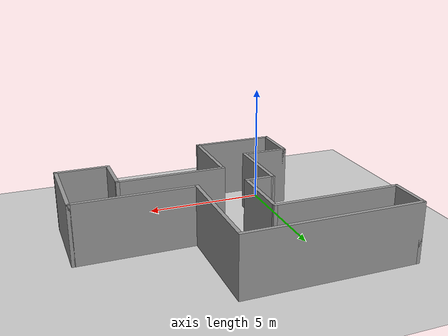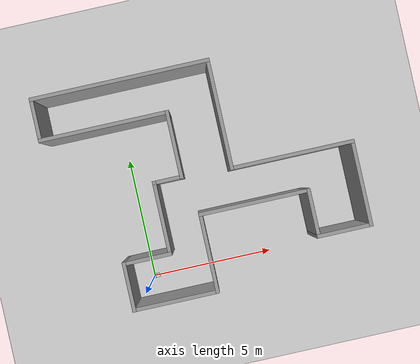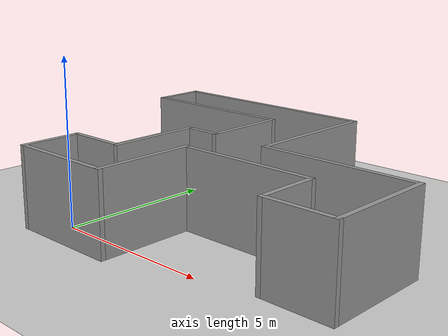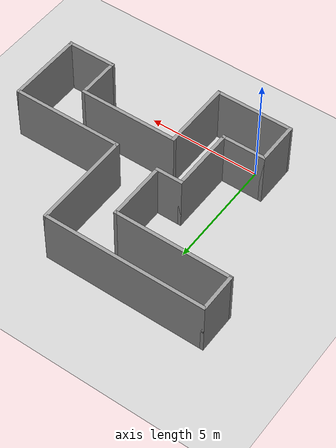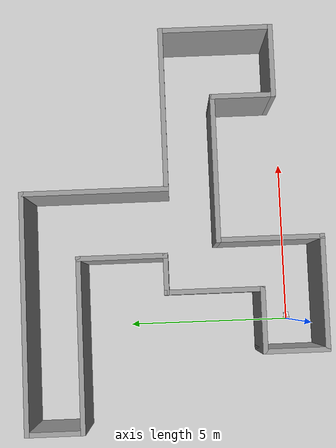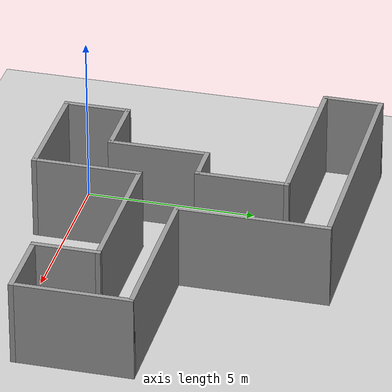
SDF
<sdf version="1.7">
 <world name="default">
  <light name="sun" type="directional">
   <pose>0 0 10 0 -0 0</pose>
   <diffuse>0.8 0.8 0.8 1</diffuse>
   <specular>0.2 0.2 0.2 1</specular>
   <attenuation>
    <range>1000</range>
    <constant>0.9</constant>
    <linear>0.01</linear>
    <quadratic>0.001</quadratic>
   </attenuation>
   <direction>-0.5 0.1 -0.9</direction>
   <spot><inner_angle>0</inner_angle><outer_angle>0</outer_angle><falloff>0</falloff></spot>
  </light>
  <model name="ground_plane">
   <static>1</static>
   <link name="link">
    <collision name="collision">
     <geometry><plane><normal>0 0 1</normal><size>100 100</size></plane></geometry>
     <surface>
      <contact><collide_bitmask>65535</collide_bitmask></contact>
      <friction><ode><mu>100</mu><mu2>50</mu2></ode></friction>
     </surface>
    </collision>
    <visual name="visual">
     <cast_shadows>0</cast_shadows>
     <geometry><plane><normal>0 0 1</normal><size>100 100</size></plane></geometry>
     <material>
      <script><uri>file://media/materials/scripts/gazebo.material</uri><name>Gazebo/Grey</name></script>
     </material>
    </visual>
   </link>
  </model>
  <gravity>0 0 -9.8</gravity>
  <magnetic_field>6e-06 2.3e-05 -4.2e-05</magnetic_field>
  <atmosphere type="adiabatic"/>
  <physics type="ode">
   <max_step_size>0.001</max_step_size>
   <real_time_factor>1</real_time_factor>
   <real_time_update_rate>1000</real_time_update_rate>
  </physics>
  <scene><ambient>0.4 0.4 0.4 1</ambient><background>0.7 0.7 0.7 1</background><shadows>1</shadows></scene>
  <audio><device>default</device></audio>
  <spherical_coordinates>
   <surface_model>EARTH_WGS84</surface_model>
   <latitude_deg>0</latitude_deg>
   <longitude_deg>0</longitude_deg>
   <elevation>0</elevation>
   <heading_deg>0</heading_deg>
  </spherical_coordinates>
  <model name="agent_bot">
   <link name="base_link">
    <inertial>
     <pose>0.102857 0 0.067857 0 -0 0</pose>
     <mass>0.7</mass>
     <inertia>
      <ixx>0.00191829</ixx>
      <ixy>0</ixy>
      <ixz>0.000573214</ixz>
      <iyy>0.00421611</iyy>
      <iyz>0</iyz>
      <izz>0.00434683</izz>
     </inertia>
    </inertial>
    <collision name="base_link_fixed_joint_lump__chassis_collision">
     <pose>0.115 0 0.075 0 -0 0</pose>
     <geometry><box><size>0.215 0.15 0.08</size></box></geometry>
    </collision>
    <collision name="base_link_fixed_joint_lump__caster_wheel_collision_1">
     <pose>0.145 0 0 0 -0 0</pose>
     <geometry><sphere><radius>0.035</radius></sphere></geometry>
     <surface><friction><ode><mu>0.001</mu><mu2>0.001</mu2></ode></friction></surface>
    </collision>
    <collision name="base_link_fixed_joint_lump__laser_frame_collision_2">
     <pose>0 0 0.1 0 -0 0</pose>
     <geometry><cylinder><length>0.04</length><radius>0.05</radius></cylinder></geometry>
    </collision>
    <visual name="base_link_fixed_joint_lump__chassis_visual">
     <pose>0.0725 0 0.04 0 -0 0</pose>
     <geometry><box><size>0.215 0.15 0.08</size></box></geometry>
     <material>
      <script><name>Gazebo/White</name><uri>file://media/materials/scripts/gazebo.material</uri></script>
     </material>
    </visual>
    <visual name="base_link_fixed_joint_lump__caster_wheel_visual_1">
     <pose>0.145 0 0 0 -0 0</pose>
     <geometry><sphere><radius>0.035</radius></sphere></geometry>
     <material>
      <script><name>Gazebo/Yellow</name><uri>file://media/materials/scripts/gazebo.material</uri></script>
     </material>
    </visual>
    <visual name="base_link_fixed_joint_lump__laser_frame_visual_2">
     <pose>0 0 0.1 0 -0 0</pose>
     <geometry><cylinder><length>0.02</length><radius>0.04</radius></cylinder></geometry>
     <material>
      <script><name>Gazebo/Red</name><uri>file://media/materials/scripts/gazebo.material</uri></script>
     </material>
    </visual>
    <sensor name="laser" type="ray">
     <visualize>1</visualize>
     <update_rate>10</update_rate>
     <ray>
      <scan>
       <horizontal>
        <samples>360</samples>
        <min_angle>-3.14</min_angle>
        <max_angle>3.14</max_angle>
        <resolution>1</resolution>
       </horizontal>
       <vertical><samples>1</samples><min_angle>0</min_angle><max_angle>0</max_angle></vertical>
      </scan>
      <range><min>0.3</min><max>50</max></range>
     </ray>
     <plugin name="laser_controller" filename="libgazebo_ros_ray_sensor.so">
      <ros><argument>~/out:=scan</argument></ros>
      <output_type>sensor_msgs/LaserScan</output_type>
      <frame_name>laser_frame</frame_name>
     </plugin>
     <pose>0 0 0.1 0 -0 0</pose>
    </sensor>
   </link>
   <joint name="left_wheel_joint" type="revolute">
    <pose relative_to="base_link">0 0.09 0 -1.57075 0 0</pose>
    <parent>base_link</parent>
    <child>left_wheel</child>
    <axis>
     <xyz>0 0 1</xyz>
     <limit><lower>-1e+16</lower><upper>1e+16</upper></limit>
     <dynamics><spring_reference>0</spring_reference><spring_stiffness>0</spring_stiffness></dynamics>
    </axis>
   </joint>
   <link name="left_wheel">
    <pose relative_to="left_wheel_joint">0 0 0 0 -0 0</pose>
    <inertial>
     <mass>0.1</mass>
     <inertia>
      <ixx>3.58333e-05</ixx>
      <ixy>0</ixy>
      <ixz>0</ixz>
      <iyy>3.58333e-05</iyy>
      <iyz>0</iyz>
      <izz>6.125e-05</izz>
     </inertia>
    </inertial>
    <collision name="left_wheel_collision">
     <geometry><sphere><radius>0.035</radius></sphere></geometry>
    </collision>
    <visual name="left_wheel_visual">
     <geometry><cylinder><length>0.025</length><radius>0.035</radius></cylinder></geometry>
     <material>
      <script><name>Gazebo/Yellow</name><uri>file://media/materials/scripts/gazebo.material</uri></script>
     </material>
    </visual>
   </link>
   <joint name="right_wheel_joint" type="revolute">
    <pose relative_to="base_link">0 -0.09 0 1.57075 -0 0</pose>
    <parent>base_link</parent>
    <child>right_wheel</child>
    <axis>
     <xyz>0 0 -1</xyz>
     <limit><lower>-1e+16</lower><upper>1e+16</upper></limit>
     <dynamics><spring_reference>0</spring_reference><spring_stiffness>0</spring_stiffness></dynamics>
    </axis>
   </joint>
   <link name="right_wheel">
    <pose relative_to="right_wheel_joint">0 0 0 0 -0 0</pose>
    <inertial>
     <mass>0.1</mass>
     <inertia>
      <ixx>3.58333e-05</ixx>
      <ixy>0</ixy>
      <ixz>0</ixz>
      <iyy>3.58333e-05</iyy>
      <iyz>0</iyz>
      <izz>6.125e-05</izz>
     </inertia>
    </inertial>
    <collision name="right_wheel_collision">
     <geometry><sphere><radius>0.035</radius></sphere></geometry>
    </collision>
    <visual name="right_wheel_visual">
     <geometry><cylinder><length>0.025</length><radius>0.035</radius></cylinder></geometry>
     <material>
      <script><name>Gazebo/Yellow</name><uri>file://media/materials/scripts/gazebo.material</uri></script>
     </material>
    </visual>
   </link>
   <static>0</static>
   <plugin name="gazebo_ros2_control" filename="libgazebo_ros2_control.so">
    <parameters>/home/ubuntu-ros/ros_ws/install/agent_bot/share/agent_bot/config/my_controllers.yaml</parameters>
    <parameters>/home/ubuntu-ros/ros_ws/install/agent_bot/share/agent_bot/config/gaz_ros2_ctl_sim.yaml</parameters>
   </plugin>
   <pose>0.026567 0.000194 0.034999 1.3e-05 -1e-05 -0.00115</pose>
  </model>
  <model name="map5">
   <pose>2.9415 4.58806 0 0 -0 0</pose>
   <link name="Wall_0">
    <collision name="Wall_0_Collision">
     <geometry><box><size>1.75 0.15 2.5</size></box></geometry>
     <pose>0 0 1.25 0 -0 0</pose>
    </collision>
    <visual name="Wall_0_Visual">
     <pose>0 0 1.25 0 -0 0</pose>
     <geometry><box><size>1.75 0.15 2.5</size></box></geometry>
     <material>
      <script><uri>file://media/materials/scripts/gazebo.material</uri><name>Gazebo/Grey</name></script>
      <ambient>1 1 1 1</ambient>
     </material>
     <meta><layer>0</layer></meta>
    </visual>
    <pose>-5.97494 2.6875 0 0 -0 1.5708</pose>
   </link>
   <link name="Wall_1">
    <collision name="Wall_1_Collision">
     <geometry><box><size>7.25 0.15 2.5</size></box></geometry>
     <pose>0 0 1.25 0 -0 0</pose>
    </collision>
    <visual name="Wall_1_Visual">
     <pose>0 0 1.25 0 -0 0</pose>
     <geometry><box><size>7.25 0.15 2.5</size></box></geometry>
     <material>
      <script><uri>file://media/materials/scripts/gazebo.material</uri><name>Gazebo/Grey</name></script>
      <ambient>1 1 1 1</ambient>
     </material>
     <meta><layer>0</layer></meta>
    </visual>
    <pose>-2.42494 3.4875 0 0 -0 0</pose>
   </link>
   <link name="Wall_10">
    <collision name="Wall_10_Collision">
     <geometry><box><size>2 0.15 2.5</size></box></geometry>
     <pose>0 0 1.25 0 -0 0</pose>
    </collision>
    <visual name="Wall_10_Visual">
     <pose>0 0 1.25 0 -0 0</pose>
     <geometry><box><size>2 0.15 2.5</size></box></geometry>
     <material>
      <script><uri>file://media/materials/scripts/gazebo.material</uri><name>Gazebo/Grey</name></script>
      <ambient>1 1 1 1</ambient>
     </material>
     <meta><layer>0</layer></meta>
    </visual>
    <pose>-3.82494 -4.5375 0 0 -0 1.5708</pose>
   </link>
   <link name="Wall_11">
    <collision name="Wall_11_Collision">
     <geometry><box><size>2 0.15 2.5</size></box></geometry>
     <pose>0 0 1.25 0 -0 0</pose>
    </collision>
    <visual name="Wall_11_Visual">
     <pose>0 0 1.25 0 -0 0</pose>
     <geometry><box><size>2 0.15 2.5</size></box></geometry>
     <material>
      <script><uri>file://media/materials/scripts/gazebo.material</uri><name>Gazebo/Grey</name></script>
      <ambient>1 1 1 1</ambient>
     </material>
     <meta><layer>0</layer></meta>
    </visual>
    <pose>-2.89994 -3.6125 0 0 -0 0</pose>
   </link>
   <link name="Wall_12">
    <collision name="Wall_12_Collision">
     <geometry><box><size>3 0.15 2.5</size></box></geometry>
     <pose>0 0 1.25 0 -0 0</pose>
    </collision>
    <visual name="Wall_12_Visual">
     <pose>0 0 1.25 0 -0 0</pose>
     <geometry><box><size>3 0.15 2.5</size></box></geometry>
     <material>
      <script><uri>file://media/materials/scripts/gazebo.material</uri><name>Gazebo/Grey</name></script>
      <ambient>1 1 1 1</ambient>
     </material>
     <meta><layer>0</layer></meta>
    </visual>
    <pose>-1.97494 -2.1875 0 0 -0 1.5708</pose>
   </link>
   <link name="Wall_13">
    <collision name="Wall_13_Collision">
     <geometry><box><size>1.25 0.15 2.5</size></box></geometry>
     <pose>0 0 1.25 0 -0 0</pose>
    </collision>
    <visual name="Wall_13_Visual">
     <pose>0 0 1.25 0 -0 0</pose>
     <geometry><box><size>1.25 0.15 2.5</size></box></geometry>
     <material>
      <script><uri>file://media/materials/scripts/gazebo.material</uri><name>Gazebo/Grey</name></script>
      <ambient>1 1 1 1</ambient>
     </material>
     <meta><layer>0</layer></meta>
    </visual>
    <pose>-1.42494 -0.7625 0 0 -0 0</pose>
   </link>
   <link name="Wall_14">
    <collision name="Wall_14_Collision">
     <geometry><box><size>2.75 0.15 2.5</size></box></geometry>
     <pose>0 0 1.25 0 -0 0</pose>
    </collision>
    <visual name="Wall_14_Visual">
     <pose>0 0 1.25 0 -0 0</pose>
     <geometry><box><size>2.75 0.15 2.5</size></box></geometry>
     <material>
      <script><uri>file://media/materials/scripts/gazebo.material</uri><name>Gazebo/Grey</name></script>
      <ambient>1 1 1 1</ambient>
     </material>
     <meta><layer>0</layer></meta>
    </visual>
    <pose>-0.874939 0.5375 0 0 -0 1.5708</pose>
   </link>
   <link name="Wall_15">
    <collision name="Wall_15_Collision">
     <geometry><box><size>5.25024 0.15 2.5</size></box></geometry>
     <pose>0 0 1.25 0 -0 0</pose>
    </collision>
    <visual name="Wall_15_Visual">
     <pose>0 0 1.25 0 -0 0</pose>
     <geometry><box><size>5.25024 0.15 2.5</size></box></geometry>
     <material>
      <script><uri>file://media/materials/scripts/gazebo.material</uri><name>Gazebo/Grey</name></script>
      <ambient>1 1 1 1</ambient>
     </material>
     <meta><layer>0</layer></meta>
    </visual>
    <pose>-3.42494 1.8375 0 0 -0 3.14159</pose>
   </link>
   <link name="Wall_2">
    <collision name="Wall_2_Collision">
     <geometry><box><size>4.5 0.15 2.5</size></box></geometry>
     <pose>0 0 1.25 0 -0 0</pose>
    </collision>
    <visual name="Wall_2_Visual">
     <pose>0 0 1.25 0 -0 0</pose>
     <geometry><box><size>4.5 0.15 2.5</size></box></geometry>
     <material>
      <script><uri>file://media/materials/scripts/gazebo.material</uri><name>Gazebo/Grey</name></script>
      <ambient>1 1 1 1</ambient>
     </material>
     <meta><layer>0</layer></meta>
    </visual>
    <pose>1.12506 1.3125 0 0 -0 -1.5708</pose>
   </link>
   <link name="Wall_3">
    <collision name="Wall_3_Collision">
     <geometry><box><size>5 0.15 2.5</size></box></geometry>
     <pose>0 0 1.25 0 -0 0</pose>
    </collision>
    <visual name="Wall_3_Visual">
     <pose>0 0 1.25 0 -0 0</pose>
     <geometry><box><size>5 0.15 2.5</size></box></geometry>
     <material>
      <script><uri>file://media/materials/scripts/gazebo.material</uri><name>Gazebo/Grey</name></script>
      <ambient>1 1 1 1</ambient>
     </material>
     <meta><layer>0</layer></meta>
    </visual>
    <pose>3.55006 -0.8625 0 0 -0 0</pose>
   </link>
   <link name="Wall_4">
    <collision name="Wall_4_Collision">
     <geometry><box><size>3.5 0.15 2.5</size></box></geometry>
     <pose>0 0 1.25 0 -0 0</pose>
    </collision>
    <visual name="Wall_4_Visual">
     <pose>0 0 1.25 0 -0 0</pose>
     <geometry><box><size>3.5 0.15 2.5</size></box></geometry>
     <material>
      <script><uri>file://media/materials/scripts/gazebo.material</uri><name>Gazebo/Grey</name></script>
      <ambient>1 1 1 1</ambient>
     </material>
     <meta><layer>0</layer></meta>
    </visual>
    <pose>5.97506 -2.5375 0 0 -0 -1.5708</pose>
   </link>
   <link name="Wall_5">
    <collision name="Wall_5_Collision">
     <geometry><box><size>2.25 0.15 2.5</size></box></geometry>
     <pose>0 0 1.25 0 -0 0</pose>
    </collision>
    <visual name="Wall_5_Visual">
     <pose>0 0 1.25 0 -0 0</pose>
     <geometry><box><size>2.25 0.15 2.5</size></box></geometry>
     <material>
      <script><uri>file://media/materials/scripts/gazebo.material</uri><name>Gazebo/Grey</name></script>
      <ambient>1 1 1 1</ambient>
     </material>
     <meta><layer>0</layer></meta>
    </visual>
    <pose>4.92506 -4.2125 0 0 -0 3.14159</pose>
   </link>
   <link name="Wall_6">
    <collision name="Wall_6_Collision">
     <geometry><box><size>2 0.15 2.5</size></box></geometry>
     <pose>0 0 1.25 0 -0 0</pose>
    </collision>
    <visual name="Wall_6_Visual">
     <pose>0 0 1.25 0 -0 0</pose>
     <geometry><box><size>2 0.15 2.5</size></box></geometry>
     <material>
      <script><uri>file://media/materials/scripts/gazebo.material</uri><name>Gazebo/Grey</name></script>
      <ambient>1 1 1 1</ambient>
     </material>
     <meta><layer>0</layer></meta>
    </visual>
    <pose>3.87506 -3.2875 0 0 -0 1.5708</pose>
   </link>
   <link name="Wall_7">
    <collision name="Wall_7_Collision">
     <geometry><box><size>4.5 0.15 2.5</size></box></geometry>
     <pose>0 0 1.25 0 -0 0</pose>
    </collision>
    <visual name="Wall_7_Visual">
     <pose>0 0 1.25 0 -0 0</pose>
     <geometry><box><size>4.5 0.15 2.5</size></box></geometry>
     <material>
      <script><uri>file://media/materials/scripts/gazebo.material</uri><name>Gazebo/Grey</name></script>
      <ambient>1 1 1 1</ambient>
     </material>
     <meta><layer>0</layer></meta>
    </visual>
    <pose>1.70006 -2.3625 0 0 -0 3.14159</pose>
   </link>
   <link name="Wall_8">
    <collision name="Wall_8_Collision">
     <geometry><box><size>3.25 0.15 2.5</size></box></geometry>
     <pose>0 0 1.25 0 -0 0</pose>
    </collision>
    <visual name="Wall_8_Visual">
     <pose>0 0 1.25 0 -0 0</pose>
     <geometry><box><size>3.25 0.15 2.5</size></box></geometry>
     <material>
      <script><uri>file://media/materials/scripts/gazebo.material</uri><name>Gazebo/Grey</name></script>
      <ambient>1 1 1 1</ambient>
     </material>
     <meta><layer>0</layer></meta>
    </visual>
    <pose>-0.474939 -3.9125 0 0 -0 -1.5708</pose>
   </link>
   <link name="Wall_9">
    <collision name="Wall_9_Collision">
     <geometry><box><size>3.5 0.15 2.5</size></box></geometry>
     <pose>0 0 1.25 0 -0 0</pose>
    </collision>
    <visual name="Wall_9_Visual">
     <pose>0 0 1.25 0 -0 0</pose>
     <geometry><box><size>3.5 0.15 2.5</size></box></geometry>
     <material>
      <script><uri>file://media/materials/scripts/gazebo.material</uri><name>Gazebo/Grey</name></script>
      <ambient>1 1 1 1</ambient>
     </material>
     <meta><layer>0</layer></meta>
    </visual>
    <pose>-2.14994 -5.4625 0 0 -0 3.14159</pose>
   </link>
   <static>1</static>
  </model>
 </world>
</sdf>
